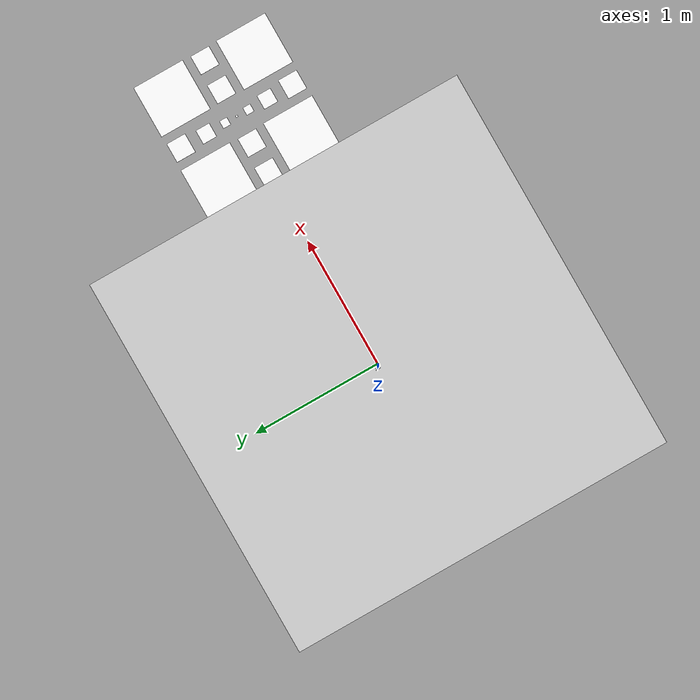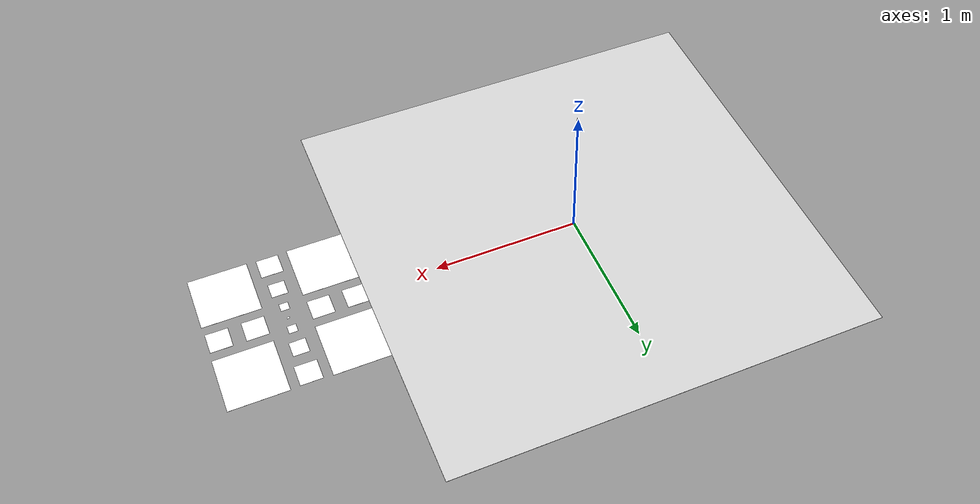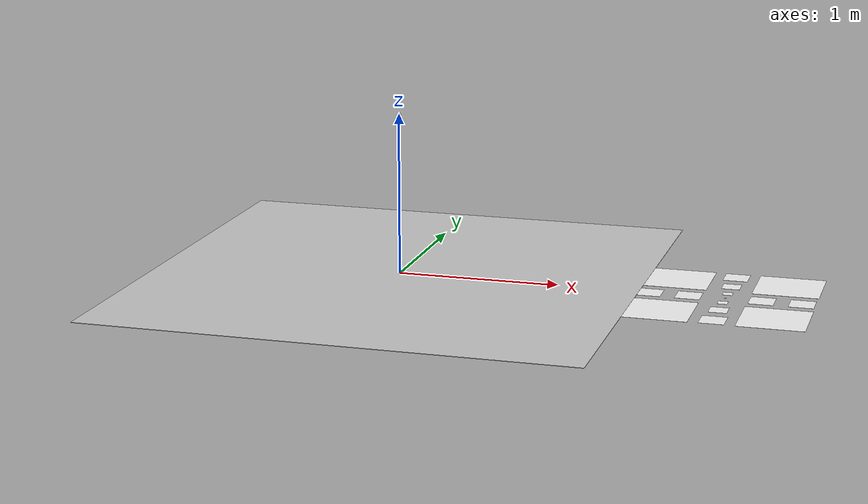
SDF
<?xml version="1.0" encoding="UTF-8"?>
<sdf version="1.9">
  <world name="mtf01_aruco_test">
    <plugin name="gz::sim::systems::Physics"
            filename="gz-sim-physics-system"/>
    <plugin name="gz::sim::systems::UserCommands"
            filename="gz-sim-user-commands-system"/>
    <plugin name="gz::sim::systems::SceneBroadcaster"
            filename="gz-sim-scene-broadcaster-system"/>
    <plugin name="gz::sim::systems::Sensors"
            filename="gz-sim-sensors-system">
      <render_engine>ogre2</render_engine>
    </plugin>
    <physics type="dart">
      <max_step_size>0.004</max_step_size>
      <real_time_factor>1.0</real_time_factor>
      <real_time_update_rate>250</real_time_update_rate>
    </physics>
    <gravity>0 0 -9.8</gravity>
    <scene>
      <grid>false</grid>
      <ambient>0.4 0.4 0.4 1</ambient>
      <background>0.7 0.7 0.7 1</background>
      <shadows>false</shadows>
    </scene>

    <light name="sun" type="directional">
      <pose>0 0 10 0 0 0</pose>
      <cast_shadows>false</cast_shadows>
      <intensity>1</intensity>
      <direction>0.001 0.625 -0.78</direction>
      <diffuse>0.904 0.904 0.904 1</diffuse>
      <specular>0.271 0.271 0.271 1</specular>
    </light>

    <include>
      <uri>model://obrik_aruco_map_4x4</uri>
    </include>

    <!-- The marker map is visual-only. gpu_lidar is render based, so add a
         white floor 1 mm below the marker planes as both its rendered target
         and a physical collision surface. -->
    <model name="mtf01_range_target">
      <static>true</static>
      <link name="link">
        <collision name="collision">
          <geometry>
            <plane>
              <normal>0 0 1</normal>
              <size>3 3</size>
            </plane>
          </geometry>
        </collision>
        <visual name="visual">
          <cast_shadows>false</cast_shadows>
          <geometry>
            <plane>
              <normal>0 0 1</normal>
              <size>3 3</size>
            </plane>
          </geometry>
          <material>
            <ambient>0.8 0.8 0.8 1</ambient>
            <diffuse>0.8 0.8 0.8 1</diffuse>
            <specular>0 0 0 1</specular>
          </material>
        </visual>
      </link>
    </model>

    <include>
      <uri>model://mtf01</uri>
      <name>mtf01_test</name>
      <!-- The reusable model senses along local +Z. Roll 180 degrees points
           it down from 1 m while preserving its X/Y measurement convention. -->
      <pose>0 0 1.0 3.141592653589793 0 0</pose>
      <static>true</static>
    </include>
  </world>
</sdf>

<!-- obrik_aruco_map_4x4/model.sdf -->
<sdf version="1.9">
  <model name="obrik_aruco_map_4x4">
    <static>true</static>
    <link name="link">
        <visual name="marker_1">
          <pose>0.336700 0.336700 0.001000 0.000000 -0.000000 0.000000</pose>
          <cast_shadows>false</cast_shadows>
          <geometry>
            <plane>
              <normal>0 0 1</normal>
              <size>0.400000 0.400000</size>
            </plane>
          </geometry>
          <material>
            <diffuse>1 1 1 1</diffuse>
            <specular>0.1 0.1 0.1 1</specular>
            <pbr>
              <metal>
                <albedo_map>model://obrik_aruco_map_4x4/materials/textures/aruco_1.png</albedo_map>
                <emissive_map>model://obrik_aruco_map_4x4/materials/textures/aruco_1.png</emissive_map>
              </metal>
            </pbr>
          </material>
        </visual>
        <visual name="marker_2">
          <pose>-0.336700 -0.336700 0.001000 0.000000 -0.000000 0.000000</pose>
          <cast_shadows>false</cast_shadows>
          <geometry>
            <plane>
              <normal>0 0 1</normal>
              <size>0.400000 0.400000</size>
            </plane>
          </geometry>
          <material>
            <diffuse>1 1 1 1</diffuse>
            <specular>0.1 0.1 0.1 1</specular>
            <pbr>
              <metal>
                <albedo_map>model://obrik_aruco_map_4x4/materials/textures/aruco_2.png</albedo_map>
                <emissive_map>model://obrik_aruco_map_4x4/materials/textures/aruco_2.png</emissive_map>
              </metal>
            </pbr>
          </material>
        </visual>
        <visual name="marker_3">
          <pose>-0.336700 0.336700 0.001000 0.000000 -0.000000 0.000000</pose>
          <cast_shadows>false</cast_shadows>
          <geometry>
            <plane>
              <normal>0 0 1</normal>
              <size>0.400000 0.400000</size>
            </plane>
          </geometry>
          <material>
            <diffuse>1 1 1 1</diffuse>
            <specular>0.1 0.1 0.1 1</specular>
            <pbr>
              <metal>
                <albedo_map>model://obrik_aruco_map_4x4/materials/textures/aruco_3.png</albedo_map>
                <emissive_map>model://obrik_aruco_map_4x4/materials/textures/aruco_3.png</emissive_map>
              </metal>
            </pbr>
          </material>
        </visual>
        <visual name="marker_4">
          <pose>0.336700 -0.336700 0.001000 0.000000 -0.000000 0.000000</pose>
          <cast_shadows>false</cast_shadows>
          <geometry>
            <plane>
              <normal>0 0 1</normal>
              <size>0.400000 0.400000</size>
            </plane>
          </geometry>
          <material>
            <diffuse>1 1 1 1</diffuse>
            <specular>0.1 0.1 0.1 1</specular>
            <pbr>
              <metal>
                <albedo_map>model://obrik_aruco_map_4x4/materials/textures/aruco_4.png</albedo_map>
                <emissive_map>model://obrik_aruco_map_4x4/materials/textures/aruco_4.png</emissive_map>
              </metal>
            </pbr>
          </material>
        </visual>
        <visual name="marker_5">
          <pose>0.000000 0.095100 0.001000 0.000000 -0.000000 0.000000</pose>
          <cast_shadows>false</cast_shadows>
          <geometry>
            <plane>
              <normal>0 0 1</normal>
              <size>0.060000 0.060000</size>
            </plane>
          </geometry>
          <material>
            <diffuse>1 1 1 1</diffuse>
            <specular>0.1 0.1 0.1 1</specular>
            <pbr>
              <metal>
                <albedo_map>model://obrik_aruco_map_4x4/materials/textures/aruco_5.png</albedo_map>
                <emissive_map>model://obrik_aruco_map_4x4/materials/textures/aruco_5.png</emissive_map>
              </metal>
            </pbr>
          </material>
        </visual>
        <visual name="marker_6">
          <pose>0.000000 -0.095100 0.001000 0.000000 -0.000000 0.000000</pose>
          <cast_shadows>false</cast_shadows>
          <geometry>
            <plane>
              <normal>0 0 1</normal>
              <size>0.060000 0.060000</size>
            </plane>
          </geometry>
          <material>
            <diffuse>1 1 1 1</diffuse>
            <specular>0.1 0.1 0.1 1</specular>
            <pbr>
              <metal>
                <albedo_map>model://obrik_aruco_map_4x4/materials/textures/aruco_6.png</albedo_map>
                <emissive_map>model://obrik_aruco_map_4x4/materials/textures/aruco_6.png</emissive_map>
              </metal>
            </pbr>
          </material>
        </visual>
        <visual name="marker_7">
          <pose>0.000000 0.249500 0.001000 0.000000 -0.000000 0.000000</pose>
          <cast_shadows>false</cast_shadows>
          <geometry>
            <plane>
              <normal>0 0 1</normal>
              <size>0.110000 0.110000</size>
            </plane>
          </geometry>
          <material>
            <diffuse>1 1 1 1</diffuse>
            <specular>0.1 0.1 0.1 1</specular>
            <pbr>
              <metal>
                <albedo_map>model://obrik_aruco_map_4x4/materials/textures/aruco_7.png</albedo_map>
                <emissive_map>model://obrik_aruco_map_4x4/materials/textures/aruco_7.png</emissive_map>
              </metal>
            </pbr>
          </material>
        </visual>
        <visual name="marker_8">
          <pose>0.000000 -0.249500 0.001000 0.000000 -0.000000 0.000000</pose>
          <cast_shadows>false</cast_shadows>
          <geometry>
            <plane>
              <normal>0 0 1</normal>
              <size>0.110000 0.110000</size>
            </plane>
          </geometry>
          <material>
            <diffuse>1 1 1 1</diffuse>
            <specular>0.1 0.1 0.1 1</specular>
            <pbr>
              <metal>
                <albedo_map>model://obrik_aruco_map_4x4/materials/textures/aruco_8.png</albedo_map>
                <emissive_map>model://obrik_aruco_map_4x4/materials/textures/aruco_8.png</emissive_map>
              </metal>
            </pbr>
          </material>
        </visual>
        <visual name="marker_9">
          <pose>0.000000 0.455000 0.001000 0.000000 -0.000000 0.000000</pose>
          <cast_shadows>false</cast_shadows>
          <geometry>
            <plane>
              <normal>0 0 1</normal>
              <size>0.150000 0.150000</size>
            </plane>
          </geometry>
          <material>
            <diffuse>1 1 1 1</diffuse>
            <specular>0.1 0.1 0.1 1</specular>
            <pbr>
              <metal>
                <albedo_map>model://obrik_aruco_map_4x4/materials/textures/aruco_9.png</albedo_map>
                <emissive_map>model://obrik_aruco_map_4x4/materials/textures/aruco_9.png</emissive_map>
              </metal>
            </pbr>
          </material>
        </visual>
        <visual name="marker_10">
          <pose>0.000000 -0.455000 0.001000 0.000000 -0.000000 0.000000</pose>
          <cast_shadows>false</cast_shadows>
          <geometry>
            <plane>
              <normal>0 0 1</normal>
              <size>0.150000 0.150000</size>
            </plane>
          </geometry>
          <material>
            <diffuse>1 1 1 1</diffuse>
            <specular>0.1 0.1 0.1 1</specular>
            <pbr>
              <metal>
                <albedo_map>model://obrik_aruco_map_4x4/materials/textures/aruco_10.png</albedo_map>
                <emissive_map>model://obrik_aruco_map_4x4/materials/textures/aruco_10.png</emissive_map>
              </metal>
            </pbr>
          </material>
        </visual>
        <visual name="marker_11">
          <pose>0.455000 0.000000 0.001000 0.000000 -0.000000 0.000000</pose>
          <cast_shadows>false</cast_shadows>
          <geometry>
            <plane>
              <normal>0 0 1</normal>
              <size>0.150000 0.150000</size>
            </plane>
          </geometry>
          <material>
            <diffuse>1 1 1 1</diffuse>
            <specular>0.1 0.1 0.1 1</specular>
            <pbr>
              <metal>
                <albedo_map>model://obrik_aruco_map_4x4/materials/textures/aruco_11.png</albedo_map>
                <emissive_map>model://obrik_aruco_map_4x4/materials/textures/aruco_11.png</emissive_map>
              </metal>
            </pbr>
          </material>
        </visual>
        <visual name="marker_12">
          <pose>0.218400 0.000000 0.001000 0.000000 -0.000000 0.000000</pose>
          <cast_shadows>false</cast_shadows>
          <geometry>
            <plane>
              <normal>0 0 1</normal>
              <size>0.150000 0.150000</size>
            </plane>
          </geometry>
          <material>
            <diffuse>1 1 1 1</diffuse>
            <specular>0.1 0.1 0.1 1</specular>
            <pbr>
              <metal>
                <albedo_map>model://obrik_aruco_map_4x4/materials/textures/aruco_12.png</albedo_map>
                <emissive_map>model://obrik_aruco_map_4x4/materials/textures/aruco_12.png</emissive_map>
              </metal>
            </pbr>
          </material>
        </visual>
        <visual name="marker_13">
          <pose>-0.455000 0.000000 0.001000 0.000000 -0.000000 0.000000</pose>
          <cast_shadows>false</cast_shadows>
          <geometry>
            <plane>
              <normal>0 0 1</normal>
              <size>0.150000 0.150000</size>
            </plane>
          </geometry>
          <material>
            <diffuse>1 1 1 1</diffuse>
            <specular>0.1 0.1 0.1 1</specular>
            <pbr>
              <metal>
                <albedo_map>model://obrik_aruco_map_4x4/materials/textures/aruco_13.png</albedo_map>
                <emissive_map>model://obrik_aruco_map_4x4/materials/textures/aruco_13.png</emissive_map>
              </metal>
            </pbr>
          </material>
        </visual>
        <visual name="marker_14">
          <pose>-0.218400 0.000000 0.001000 0.000000 -0.000000 0.000000</pose>
          <cast_shadows>false</cast_shadows>
          <geometry>
            <plane>
              <normal>0 0 1</normal>
              <size>0.150000 0.150000</size>
            </plane>
          </geometry>
          <material>
            <diffuse>1 1 1 1</diffuse>
            <specular>0.1 0.1 0.1 1</specular>
            <pbr>
              <metal>
                <albedo_map>model://obrik_aruco_map_4x4/materials/textures/aruco_14.png</albedo_map>
                <emissive_map>model://obrik_aruco_map_4x4/materials/textures/aruco_14.png</emissive_map>
              </metal>
            </pbr>
          </material>
        </visual>
        <visual name="marker_15">
          <pose>0.000000 0.000000 0.001000 0.000000 -0.000000 0.000000</pose>
          <cast_shadows>false</cast_shadows>
          <geometry>
            <plane>
              <normal>0 0 1</normal>
              <size>0.015000 0.015000</size>
            </plane>
          </geometry>
          <material>
            <diffuse>1 1 1 1</diffuse>
            <specular>0.1 0.1 0.1 1</specular>
            <pbr>
              <metal>
                <albedo_map>model://obrik_aruco_map_4x4/materials/textures/aruco_15.png</albedo_map>
                <emissive_map>model://obrik_aruco_map_4x4/materials/textures/aruco_15.png</emissive_map>
              </metal>
            </pbr>
          </material>
        </visual>
        <visual name="marker_16">
          <pose>1.010100 0.336700 0.001000 0.000000 -0.000000 0.000000</pose>
          <cast_shadows>false</cast_shadows>
          <geometry>
            <plane>
              <normal>0 0 1</normal>
              <size>0.400000 0.400000</size>
            </plane>
          </geometry>
          <material>
            <diffuse>1 1 1 1</diffuse>
            <specular>0.1 0.1 0.1 1</specular>
            <pbr>
              <metal>
                <albedo_map>model://obrik_aruco_map_4x4/materials/textures/aruco_16.png</albedo_map>
                <emissive_map>model://obrik_aruco_map_4x4/materials/textures/aruco_16.png</emissive_map>
              </metal>
            </pbr>
          </material>
        </visual>
        <visual name="marker_18">
          <pose>1.010100 -0.336700 0.001000 0.000000 -0.000000 0.000000</pose>
          <cast_shadows>false</cast_shadows>
          <geometry>
            <plane>
              <normal>0 0 1</normal>
              <size>0.400000 0.400000</size>
            </plane>
          </geometry>
          <material>
            <diffuse>1 1 1 1</diffuse>
            <specular>0.1 0.1 0.1 1</specular>
            <pbr>
              <metal>
                <albedo_map>model://obrik_aruco_map_4x4/materials/textures/aruco_18.png</albedo_map>
                <emissive_map>model://obrik_aruco_map_4x4/materials/textures/aruco_18.png</emissive_map>
              </metal>
            </pbr>
          </material>
        </visual>
        <visual name="marker_20">
          <pose>0.673400 0.095100 0.001000 0.000000 -0.000000 0.000000</pose>
          <cast_shadows>false</cast_shadows>
          <geometry>
            <plane>
              <normal>0 0 1</normal>
              <size>0.060000 0.060000</size>
            </plane>
          </geometry>
          <material>
            <diffuse>1 1 1 1</diffuse>
            <specular>0.1 0.1 0.1 1</specular>
            <pbr>
              <metal>
                <albedo_map>model://obrik_aruco_map_4x4/materials/textures/aruco_20.png</albedo_map>
                <emissive_map>model://obrik_aruco_map_4x4/materials/textures/aruco_20.png</emissive_map>
              </metal>
            </pbr>
          </material>
        </visual>
        <visual name="marker_21">
          <pose>0.673400 -0.095100 0.001000 0.000000 -0.000000 0.000000</pose>
          <cast_shadows>false</cast_shadows>
          <geometry>
            <plane>
              <normal>0 0 1</normal>
              <size>0.060000 0.060000</size>
            </plane>
          </geometry>
          <material>
            <diffuse>1 1 1 1</diffuse>
            <specular>0.1 0.1 0.1 1</specular>
            <pbr>
              <metal>
                <albedo_map>model://obrik_aruco_map_4x4/materials/textures/aruco_21.png</albedo_map>
                <emissive_map>model://obrik_aruco_map_4x4/materials/textures/aruco_21.png</emissive_map>
              </metal>
            </pbr>
          </material>
        </visual>
        <visual name="marker_22">
          <pose>0.673400 0.249500 0.001000 0.000000 -0.000000 0.000000</pose>
          <cast_shadows>false</cast_shadows>
          <geometry>
            <plane>
              <normal>0 0 1</normal>
              <size>0.110000 0.110000</size>
            </plane>
          </geometry>
          <material>
            <diffuse>1 1 1 1</diffuse>
            <specular>0.1 0.1 0.1 1</specular>
            <pbr>
              <metal>
                <albedo_map>model://obrik_aruco_map_4x4/materials/textures/aruco_22.png</albedo_map>
                <emissive_map>model://obrik_aruco_map_4x4/materials/textures/aruco_22.png</emissive_map>
              </metal>
            </pbr>
          </material>
        </visual>
        <visual name="marker_23">
          <pose>0.673400 -0.249500 0.001000 0.000000 -0.000000 0.000000</pose>
          <cast_shadows>false</cast_shadows>
          <geometry>
            <plane>
              <normal>0 0 1</normal>
              <size>0.110000 0.110000</size>
            </plane>
          </geometry>
          <material>
            <diffuse>1 1 1 1</diffuse>
            <specular>0.1 0.1 0.1 1</specular>
            <pbr>
              <metal>
                <albedo_map>model://obrik_aruco_map_4x4/materials/textures/aruco_23.png</albedo_map>
                <emissive_map>model://obrik_aruco_map_4x4/materials/textures/aruco_23.png</emissive_map>
              </metal>
            </pbr>
          </material>
        </visual>
        <visual name="marker_24">
          <pose>0.673400 0.455000 0.001000 0.000000 -0.000000 0.000000</pose>
          <cast_shadows>false</cast_shadows>
          <geometry>
            <plane>
              <normal>0 0 1</normal>
              <size>0.150000 0.150000</size>
            </plane>
          </geometry>
          <material>
            <diffuse>1 1 1 1</diffuse>
            <specular>0.1 0.1 0.1 1</specular>
            <pbr>
              <metal>
                <albedo_map>model://obrik_aruco_map_4x4/materials/textures/aruco_24.png</albedo_map>
                <emissive_map>model://obrik_aruco_map_4x4/materials/textures/aruco_24.png</emissive_map>
              </metal>
            </pbr>
          </material>
        </visual>
        <visual name="marker_25">
          <pose>0.673400 -0.455000 0.001000 0.000000 -0.000000 0.000000</pose>
          <cast_shadows>false</cast_shadows>
          <geometry>
            <plane>
              <normal>0 0 1</normal>
              <size>0.150000 0.150000</size>
            </plane>
          </geometry>
          <material>
            <diffuse>1 1 1 1</diffuse>
            <specular>0.1 0.1 0.1 1</specular>
            <pbr>
              <metal>
                <albedo_map>model://obrik_aruco_map_4x4/materials/textures/aruco_25.png</albedo_map>
                <emissive_map>model://obrik_aruco_map_4x4/materials/textures/aruco_25.png</emissive_map>
              </metal>
            </pbr>
          </material>
        </visual>
        <visual name="marker_26">
          <pose>1.128400 0.000000 0.001000 0.000000 -0.000000 0.000000</pose>
          <cast_shadows>false</cast_shadows>
          <geometry>
            <plane>
              <normal>0 0 1</normal>
              <size>0.150000 0.150000</size>
            </plane>
          </geometry>
          <material>
            <diffuse>1 1 1 1</diffuse>
            <specular>0.1 0.1 0.1 1</specular>
            <pbr>
              <metal>
                <albedo_map>model://obrik_aruco_map_4x4/materials/textures/aruco_26.png</albedo_map>
                <emissive_map>model://obrik_aruco_map_4x4/materials/textures/aruco_26.png</emissive_map>
              </metal>
            </pbr>
          </material>
        </visual>
        <visual name="marker_27">
          <pose>0.891800 0.000000 0.001000 0.000000 -0.000000 0.000000</pose>
          <cast_shadows>false</cast_shadows>
          <geometry>
            <plane>
              <normal>0 0 1</normal>
              <size>0.150000 0.150000</size>
            </plane>
          </geometry>
          <material>
            <diffuse>1 1 1 1</diffuse>
            <specular>0.1 0.1 0.1 1</specular>
            <pbr>
              <metal>
                <albedo_map>model://obrik_aruco_map_4x4/materials/textures/aruco_27.png</albedo_map>
                <emissive_map>model://obrik_aruco_map_4x4/materials/textures/aruco_27.png</emissive_map>
              </metal>
            </pbr>
          </material>
        </visual>
        <visual name="marker_28">
          <pose>0.673400 0.000000 0.001000 0.000000 -0.000000 0.000000</pose>
          <cast_shadows>false</cast_shadows>
          <geometry>
            <plane>
              <normal>0 0 1</normal>
              <size>0.015000 0.015000</size>
            </plane>
          </geometry>
          <material>
            <diffuse>1 1 1 1</diffuse>
            <specular>0.1 0.1 0.1 1</specular>
            <pbr>
              <metal>
                <albedo_map>model://obrik_aruco_map_4x4/materials/textures/aruco_28.png</albedo_map>
                <emissive_map>model://obrik_aruco_map_4x4/materials/textures/aruco_28.png</emissive_map>
              </metal>
            </pbr>
          </material>
        </visual>
        <visual name="marker_29">
          <pose>-1.010100 0.336700 0.001000 0.000000 -0.000000 0.000000</pose>
          <cast_shadows>false</cast_shadows>
          <geometry>
            <plane>
              <normal>0 0 1</normal>
              <size>0.400000 0.400000</size>
            </plane>
          </geometry>
          <material>
            <diffuse>1 1 1 1</diffuse>
            <specular>0.1 0.1 0.1 1</specular>
            <pbr>
              <metal>
                <albedo_map>model://obrik_aruco_map_4x4/materials/textures/aruco_29.png</albedo_map>
                <emissive_map>model://obrik_aruco_map_4x4/materials/textures/aruco_29.png</emissive_map>
              </metal>
            </pbr>
          </material>
        </visual>
        <visual name="marker_94">
          <pose>-1.010100 -0.336700 0.001000 0.000000 -0.000000 0.000000</pose>
          <cast_shadows>false</cast_shadows>
          <geometry>
            <plane>
              <normal>0 0 1</normal>
              <size>0.400000 0.400000</size>
            </plane>
          </geometry>
          <material>
            <diffuse>1 1 1 1</diffuse>
            <specular>0.1 0.1 0.1 1</specular>
            <pbr>
              <metal>
                <albedo_map>model://obrik_aruco_map_4x4/materials/textures/aruco_94.png</albedo_map>
                <emissive_map>model://obrik_aruco_map_4x4/materials/textures/aruco_94.png</emissive_map>
              </metal>
            </pbr>
          </material>
        </visual>
        <visual name="marker_31">
          <pose>-0.673400 0.095100 0.001000 0.000000 -0.000000 0.000000</pose>
          <cast_shadows>false</cast_shadows>
          <geometry>
            <plane>
              <normal>0 0 1</normal>
              <size>0.060000 0.060000</size>
            </plane>
          </geometry>
          <material>
            <diffuse>1 1 1 1</diffuse>
            <specular>0.1 0.1 0.1 1</specular>
            <pbr>
              <metal>
                <albedo_map>model://obrik_aruco_map_4x4/materials/textures/aruco_31.png</albedo_map>
                <emissive_map>model://obrik_aruco_map_4x4/materials/textures/aruco_31.png</emissive_map>
              </metal>
            </pbr>
          </material>
        </visual>
        <visual name="marker_32">
          <pose>-0.673400 -0.095100 0.001000 0.000000 -0.000000 0.000000</pose>
          <cast_shadows>false</cast_shadows>
          <geometry>
            <plane>
              <normal>0 0 1</normal>
              <size>0.060000 0.060000</size>
            </plane>
          </geometry>
          <material>
            <diffuse>1 1 1 1</diffuse>
            <specular>0.1 0.1 0.1 1</specular>
            <pbr>
              <metal>
                <albedo_map>model://obrik_aruco_map_4x4/materials/textures/aruco_32.png</albedo_map>
                <emissive_map>model://obrik_aruco_map_4x4/materials/textures/aruco_32.png</emissive_map>
              </metal>
            </pbr>
          </material>
        </visual>
        <visual name="marker_33">
          <pose>-0.673400 0.249500 0.001000 0.000000 -0.000000 0.000000</pose>
          <cast_shadows>false</cast_shadows>
          <geometry>
            <plane>
              <normal>0 0 1</normal>
              <size>0.110000 0.110000</size>
            </plane>
          </geometry>
          <material>
            <diffuse>1 1 1 1</diffuse>
            <specular>0.1 0.1 0.1 1</specular>
            <pbr>
              <metal>
                <albedo_map>model://obrik_aruco_map_4x4/materials/textures/aruco_33.png</albedo_map>
                <emissive_map>model://obrik_aruco_map_4x4/materials/textures/aruco_33.png</emissive_map>
              </metal>
            </pbr>
          </material>
        </visual>
        <visual name="marker_34">
          <pose>-0.673400 -0.249500 0.001000 0.000000 -0.000000 0.000000</pose>
          <cast_shadows>false</cast_shadows>
          <geometry>
            <plane>
              <normal>0 0 1</normal>
              <size>0.110000 0.110000</size>
            </plane>
          </geometry>
          <material>
            <diffuse>1 1 1 1</diffuse>
            <specular>0.1 0.1 0.1 1</specular>
            <pbr>
              <metal>
                <albedo_map>model://obrik_aruco_map_4x4/materials/textures/aruco_34.png</albedo_map>
                <emissive_map>model://obrik_aruco_map_4x4/materials/textures/aruco_34.png</emissive_map>
              </metal>
            </pbr>
          </material>
        </visual>
        <visual name="marker_35">
          <pose>-0.673400 0.455000 0.001000 0.000000 -0.000000 0.000000</pose>
          <cast_shadows>false</cast_shadows>
          <geometry>
            <plane>
              <normal>0 0 1</normal>
              <size>0.150000 0.150000</size>
            </plane>
          </geometry>
          <material>
            <diffuse>1 1 1 1</diffuse>
            <specular>0.1 0.1 0.1 1</specular>
            <pbr>
              <metal>
                <albedo_map>model://obrik_aruco_map_4x4/materials/textures/aruco_35.png</albedo_map>
                <emissive_map>model://obrik_aruco_map_4x4/materials/textures/aruco_35.png</emissive_map>
              </metal>
            </pbr>
          </material>
        </visual>
        <visual name="marker_36">
          <pose>-0.673400 -0.455000 0.001000 0.000000 -0.000000 0.000000</pose>
          <cast_shadows>false</cast_shadows>
          <geometry>
            <plane>
              <normal>0 0 1</normal>
              <size>0.150000 0.150000</size>
            </plane>
          </geometry>
          <material>
            <diffuse>1 1 1 1</diffuse>
            <specular>0.1 0.1 0.1 1</specular>
            <pbr>
              <metal>
                <albedo_map>model://obrik_aruco_map_4x4/materials/textures/aruco_36.png</albedo_map>
                <emissive_map>model://obrik_aruco_map_4x4/materials/textures/aruco_36.png</emissive_map>
              </metal>
            </pbr>
          </material>
        </visual>
        <visual name="marker_92">
          <pose>-1.128400 0.000000 0.001000 0.000000 -0.000000 0.000000</pose>
          <cast_shadows>false</cast_shadows>
          <geometry>
            <plane>
              <normal>0 0 1</normal>
              <size>0.150000 0.150000</size>
            </plane>
          </geometry>
          <material>
            <diffuse>1 1 1 1</diffuse>
            <specular>0.1 0.1 0.1 1</specular>
            <pbr>
              <metal>
                <albedo_map>model://obrik_aruco_map_4x4/materials/textures/aruco_92.png</albedo_map>
                <emissive_map>model://obrik_aruco_map_4x4/materials/textures/aruco_92.png</emissive_map>
              </metal>
            </pbr>
          </material>
        </visual>
        <visual name="marker_38">
          <pose>-0.891800 0.000000 0.001000 0.000000 -0.000000 0.000000</pose>
          <cast_shadows>false</cast_shadows>
          <geometry>
            <plane>
              <normal>0 0 1</normal>
              <size>0.150000 0.150000</size>
            </plane>
          </geometry>
          <material>
            <diffuse>1 1 1 1</diffuse>
            <specular>0.1 0.1 0.1 1</specular>
            <pbr>
              <metal>
                <albedo_map>model://obrik_aruco_map_4x4/materials/textures/aruco_38.png</albedo_map>
                <emissive_map>model://obrik_aruco_map_4x4/materials/textures/aruco_38.png</emissive_map>
              </metal>
            </pbr>
          </material>
        </visual>
        <visual name="marker_39">
          <pose>-0.673400 0.000000 0.001000 0.000000 -0.000000 0.000000</pose>
          <cast_shadows>false</cast_shadows>
          <geometry>
            <plane>
              <normal>0 0 1</normal>
              <size>0.015000 0.015000</size>
            </plane>
          </geometry>
          <material>
            <diffuse>1 1 1 1</diffuse>
            <specular>0.1 0.1 0.1 1</specular>
            <pbr>
              <metal>
                <albedo_map>model://obrik_aruco_map_4x4/materials/textures/aruco_39.png</albedo_map>
                <emissive_map>model://obrik_aruco_map_4x4/materials/textures/aruco_39.png</emissive_map>
              </metal>
            </pbr>
          </material>
        </visual>
        <visual name="marker_40">
          <pose>1.683500 0.336700 0.001000 0.000000 -0.000000 0.000000</pose>
          <cast_shadows>false</cast_shadows>
          <geometry>
            <plane>
              <normal>0 0 1</normal>
              <size>0.400000 0.400000</size>
            </plane>
          </geometry>
          <material>
            <diffuse>1 1 1 1</diffuse>
            <specular>0.1 0.1 0.1 1</specular>
            <pbr>
              <metal>
                <albedo_map>model://obrik_aruco_map_4x4/materials/textures/aruco_40.png</albedo_map>
                <emissive_map>model://obrik_aruco_map_4x4/materials/textures/aruco_40.png</emissive_map>
              </metal>
            </pbr>
          </material>
        </visual>
        <visual name="marker_97">
          <pose>1.683500 -0.336700 0.001000 0.000000 -0.000000 0.000000</pose>
          <cast_shadows>false</cast_shadows>
          <geometry>
            <plane>
              <normal>0 0 1</normal>
              <size>0.400000 0.400000</size>
            </plane>
          </geometry>
          <material>
            <diffuse>1 1 1 1</diffuse>
            <specular>0.1 0.1 0.1 1</specular>
            <pbr>
              <metal>
                <albedo_map>model://obrik_aruco_map_4x4/materials/textures/aruco_97.png</albedo_map>
                <emissive_map>model://obrik_aruco_map_4x4/materials/textures/aruco_97.png</emissive_map>
              </metal>
            </pbr>
          </material>
        </visual>
        <visual name="marker_42">
          <pose>1.346800 0.095100 0.001000 0.000000 -0.000000 0.000000</pose>
          <cast_shadows>false</cast_shadows>
          <geometry>
            <plane>
              <normal>0 0 1</normal>
              <size>0.060000 0.060000</size>
            </plane>
          </geometry>
          <material>
            <diffuse>1 1 1 1</diffuse>
            <specular>0.1 0.1 0.1 1</specular>
            <pbr>
              <metal>
                <albedo_map>model://obrik_aruco_map_4x4/materials/textures/aruco_42.png</albedo_map>
                <emissive_map>model://obrik_aruco_map_4x4/materials/textures/aruco_42.png</emissive_map>
              </metal>
            </pbr>
          </material>
        </visual>
        <visual name="marker_43">
          <pose>1.346800 -0.095100 0.001000 0.000000 -0.000000 0.000000</pose>
          <cast_shadows>false</cast_shadows>
          <geometry>
            <plane>
              <normal>0 0 1</normal>
              <size>0.060000 0.060000</size>
            </plane>
          </geometry>
          <material>
            <diffuse>1 1 1 1</diffuse>
            <specular>0.1 0.1 0.1 1</specular>
            <pbr>
              <metal>
                <albedo_map>model://obrik_aruco_map_4x4/materials/textures/aruco_43.png</albedo_map>
                <emissive_map>model://obrik_aruco_map_4x4/materials/textures/aruco_43.png</emissive_map>
              </metal>
            </pbr>
          </material>
        </visual>
        <visual name="marker_44">
          <pose>1.346800 0.249500 0.001000 0.000000 -0.000000 0.000000</pose>
          <cast_shadows>false</cast_shadows>
          <geometry>
            <plane>
              <normal>0 0 1</normal>
              <size>0.110000 0.110000</size>
            </plane>
          </geometry>
          <material>
            <diffuse>1 1 1 1</diffuse>
            <specular>0.1 0.1 0.1 1</specular>
            <pbr>
              <metal>
                <albedo_map>model://obrik_aruco_map_4x4/materials/textures/aruco_44.png</albedo_map>
                <emissive_map>model://obrik_aruco_map_4x4/materials/textures/aruco_44.png</emissive_map>
              </metal>
            </pbr>
          </material>
        </visual>
        <visual name="marker_45">
          <pose>1.346800 -0.249500 0.001000 0.000000 -0.000000 0.000000</pose>
          <cast_shadows>false</cast_shadows>
          <geometry>
            <plane>
              <normal>0 0 1</normal>
              <size>0.110000 0.110000</size>
            </plane>
          </geometry>
          <material>
            <diffuse>1 1 1 1</diffuse>
            <specular>0.1 0.1 0.1 1</specular>
            <pbr>
              <metal>
                <albedo_map>model://obrik_aruco_map_4x4/materials/textures/aruco_45.png</albedo_map>
                <emissive_map>model://obrik_aruco_map_4x4/materials/textures/aruco_45.png</emissive_map>
              </metal>
            </pbr>
          </material>
        </visual>
        <visual name="marker_46">
          <pose>1.346800 0.455000 0.001000 0.000000 -0.000000 0.000000</pose>
          <cast_shadows>false</cast_shadows>
          <geometry>
            <plane>
              <normal>0 0 1</normal>
              <size>0.150000 0.150000</size>
            </plane>
          </geometry>
          <material>
            <diffuse>1 1 1 1</diffuse>
            <specular>0.1 0.1 0.1 1</specular>
            <pbr>
              <metal>
                <albedo_map>model://obrik_aruco_map_4x4/materials/textures/aruco_46.png</albedo_map>
                <emissive_map>model://obrik_aruco_map_4x4/materials/textures/aruco_46.png</emissive_map>
              </metal>
            </pbr>
          </material>
        </visual>
        <visual name="marker_47">
          <pose>1.346800 -0.455000 0.001000 0.000000 -0.000000 0.000000</pose>
          <cast_shadows>false</cast_shadows>
          <geometry>
            <plane>
              <normal>0 0 1</normal>
              <size>0.150000 0.150000</size>
            </plane>
          </geometry>
          <material>
            <diffuse>1 1 1 1</diffuse>
            <specular>0.1 0.1 0.1 1</specular>
            <pbr>
              <metal>
                <albedo_map>model://obrik_aruco_map_4x4/materials/textures/aruco_47.png</albedo_map>
                <emissive_map>model://obrik_aruco_map_4x4/materials/textures/aruco_47.png</emissive_map>
              </metal>
            </pbr>
          </material>
        </visual>
        <visual name="marker_48">
          <pose>1.565200 0.000000 0.001000 0.000000 -0.000000 0.000000</pose>
          <cast_shadows>false</cast_shadows>
          <geometry>
            <plane>
              <normal>0 0 1</normal>
              <size>0.150000 0.150000</size>
            </plane>
          </geometry>
          <material>
            <diffuse>1 1 1 1</diffuse>
            <specular>0.1 0.1 0.1 1</specular>
            <pbr>
              <metal>
                <albedo_map>model://obrik_aruco_map_4x4/materials/textures/aruco_48.png</albedo_map>
                <emissive_map>model://obrik_aruco_map_4x4/materials/textures/aruco_48.png</emissive_map>
              </metal>
            </pbr>
          </material>
        </visual>
        <visual name="marker_49">
          <pose>1.801800 0.000000 0.001000 0.000000 -0.000000 0.000000</pose>
          <cast_shadows>false</cast_shadows>
          <geometry>
            <plane>
              <normal>0 0 1</normal>
              <size>0.150000 0.150000</size>
            </plane>
          </geometry>
          <material>
            <diffuse>1 1 1 1</diffuse>
            <specular>0.1 0.1 0.1 1</specular>
            <pbr>
              <metal>
                <albedo_map>model://obrik_aruco_map_4x4/materials/textures/aruco_49.png</albedo_map>
                <emissive_map>model://obrik_aruco_map_4x4/materials/textures/aruco_49.png</emissive_map>
              </metal>
            </pbr>
          </material>
        </visual>
        <visual name="marker_50">
          <pose>1.346800 0.000000 0.001000 0.000000 -0.000000 0.000000</pose>
          <cast_shadows>false</cast_shadows>
          <geometry>
            <plane>
              <normal>0 0 1</normal>
              <size>0.015000 0.015000</size>
            </plane>
          </geometry>
          <material>
            <diffuse>1 1 1 1</diffuse>
            <specular>0.1 0.1 0.1 1</specular>
            <pbr>
              <metal>
                <albedo_map>model://obrik_aruco_map_4x4/materials/textures/aruco_50.png</albedo_map>
                <emissive_map>model://obrik_aruco_map_4x4/materials/textures/aruco_50.png</emissive_map>
              </metal>
            </pbr>
          </material>
        </visual>
        <visual name="marker_51">
          <pose>2.356900 0.336700 0.001000 0.000000 -0.000000 0.000000</pose>
          <cast_shadows>false</cast_shadows>
          <geometry>
            <plane>
              <normal>0 0 1</normal>
              <size>0.400000 0.400000</size>
            </plane>
          </geometry>
          <material>
            <diffuse>1 1 1 1</diffuse>
            <specular>0.1 0.1 0.1 1</specular>
            <pbr>
              <metal>
                <albedo_map>model://obrik_aruco_map_4x4/materials/textures/aruco_51.png</albedo_map>
                <emissive_map>model://obrik_aruco_map_4x4/materials/textures/aruco_51.png</emissive_map>
              </metal>
            </pbr>
          </material>
        </visual>
        <visual name="marker_52">
          <pose>2.356900 -0.336700 0.001000 0.000000 -0.000000 0.000000</pose>
          <cast_shadows>false</cast_shadows>
          <geometry>
            <plane>
              <normal>0 0 1</normal>
              <size>0.400000 0.400000</size>
            </plane>
          </geometry>
          <material>
            <diffuse>1 1 1 1</diffuse>
            <specular>0.1 0.1 0.1 1</specular>
            <pbr>
              <metal>
                <albedo_map>model://obrik_aruco_map_4x4/materials/textures/aruco_52.png</albedo_map>
                <emissive_map>model://obrik_aruco_map_4x4/materials/textures/aruco_52.png</emissive_map>
              </metal>
            </pbr>
          </material>
        </visual>
        <visual name="marker_53">
          <pose>2.020200 0.095100 0.001000 0.000000 -0.000000 0.000000</pose>
          <cast_shadows>false</cast_shadows>
          <geometry>
            <plane>
              <normal>0 0 1</normal>
              <size>0.060000 0.060000</size>
            </plane>
          </geometry>
          <material>
            <diffuse>1 1 1 1</diffuse>
            <specular>0.1 0.1 0.1 1</specular>
            <pbr>
              <metal>
                <albedo_map>model://obrik_aruco_map_4x4/materials/textures/aruco_53.png</albedo_map>
                <emissive_map>model://obrik_aruco_map_4x4/materials/textures/aruco_53.png</emissive_map>
              </metal>
            </pbr>
          </material>
        </visual>
        <visual name="marker_54">
          <pose>2.020200 -0.095100 0.001000 0.000000 -0.000000 0.000000</pose>
          <cast_shadows>false</cast_shadows>
          <geometry>
            <plane>
              <normal>0 0 1</normal>
              <size>0.060000 0.060000</size>
            </plane>
          </geometry>
          <material>
            <diffuse>1 1 1 1</diffuse>
            <specular>0.1 0.1 0.1 1</specular>
            <pbr>
              <metal>
                <albedo_map>model://obrik_aruco_map_4x4/materials/textures/aruco_54.png</albedo_map>
                <emissive_map>model://obrik_aruco_map_4x4/materials/textures/aruco_54.png</emissive_map>
              </metal>
            </pbr>
          </material>
        </visual>
        <visual name="marker_55">
          <pose>2.020200 0.249500 0.001000 0.000000 -0.000000 0.000000</pose>
          <cast_shadows>false</cast_shadows>
          <geometry>
            <plane>
              <normal>0 0 1</normal>
              <size>0.110000 0.110000</size>
            </plane>
          </geometry>
          <material>
            <diffuse>1 1 1 1</diffuse>
            <specular>0.1 0.1 0.1 1</specular>
            <pbr>
              <metal>
                <albedo_map>model://obrik_aruco_map_4x4/materials/textures/aruco_55.png</albedo_map>
                <emissive_map>model://obrik_aruco_map_4x4/materials/textures/aruco_55.png</emissive_map>
              </metal>
            </pbr>
          </material>
        </visual>
        <visual name="marker_56">
          <pose>2.020200 -0.249500 0.001000 0.000000 -0.000000 0.000000</pose>
          <cast_shadows>false</cast_shadows>
          <geometry>
            <plane>
              <normal>0 0 1</normal>
              <size>0.110000 0.110000</size>
            </plane>
          </geometry>
          <material>
            <diffuse>1 1 1 1</diffuse>
            <specular>0.1 0.1 0.1 1</specular>
            <pbr>
              <metal>
                <albedo_map>model://obrik_aruco_map_4x4/materials/textures/aruco_56.png</albedo_map>
                <emissive_map>model://obrik_aruco_map_4x4/materials/textures/aruco_56.png</emissive_map>
              </metal>
            </pbr>
          </material>
        </visual>
        <visual name="marker_57">
          <pose>2.020200 0.455000 0.001000 0.000000 -0.000000 0.000000</pose>
          <cast_shadows>false</cast_shadows>
          <geometry>
            <plane>
              <normal>0 0 1</normal>
              <size>0.150000 0.150000</size>
            </plane>
          </geometry>
          <material>
            <diffuse>1 1 1 1</diffuse>
            <specular>0.1 0.1 0.1 1</specular>
            <pbr>
              <metal>
                <albedo_map>model://obrik_aruco_map_4x4/materials/textures/aruco_57.png</albedo_map>
                <emissive_map>model://obrik_aruco_map_4x4/materials/textures/aruco_57.png</emissive_map>
              </metal>
            </pbr>
          </material>
        </visual>
        <visual name="marker_58">
          <pose>2.020200 -0.455000 0.001000 0.000000 -0.000000 0.000000</pose>
          <cast_shadows>false</cast_shadows>
          <geometry>
            <plane>
              <normal>0 0 1</normal>
              <size>0.150000 0.150000</size>
            </plane>
          </geometry>
          <material>
            <diffuse>1 1 1 1</diffuse>
            <specular>0.1 0.1 0.1 1</specular>
            <pbr>
              <metal>
                <albedo_map>model://obrik_aruco_map_4x4/materials/textures/aruco_58.png</albedo_map>
                <emissive_map>model://obrik_aruco_map_4x4/materials/textures/aruco_58.png</emissive_map>
              </metal>
            </pbr>
          </material>
        </visual>
        <visual name="marker_59">
          <pose>2.238600 0.000000 0.001000 0.000000 -0.000000 0.000000</pose>
          <cast_shadows>false</cast_shadows>
          <geometry>
            <plane>
              <normal>0 0 1</normal>
              <size>0.150000 0.150000</size>
            </plane>
          </geometry>
          <material>
            <diffuse>1 1 1 1</diffuse>
            <specular>0.1 0.1 0.1 1</specular>
            <pbr>
              <metal>
                <albedo_map>model://obrik_aruco_map_4x4/materials/textures/aruco_59.png</albedo_map>
                <emissive_map>model://obrik_aruco_map_4x4/materials/textures/aruco_59.png</emissive_map>
              </metal>
            </pbr>
          </material>
        </visual>
        <visual name="marker_96">
          <pose>2.475200 0.000000 0.001000 0.000000 -0.000000 0.000000</pose>
          <cast_shadows>false</cast_shadows>
          <geometry>
            <plane>
              <normal>0 0 1</normal>
              <size>0.150000 0.150000</size>
            </plane>
          </geometry>
          <material>
            <diffuse>1 1 1 1</diffuse>
            <specular>0.1 0.1 0.1 1</specular>
            <pbr>
              <metal>
                <albedo_map>model://obrik_aruco_map_4x4/materials/textures/aruco_96.png</albedo_map>
                <emissive_map>model://obrik_aruco_map_4x4/materials/textures/aruco_96.png</emissive_map>
              </metal>
            </pbr>
          </material>
        </visual>
        <visual name="marker_61">
          <pose>2.020200 0.000000 0.001000 0.000000 -0.000000 0.000000</pose>
          <cast_shadows>false</cast_shadows>
          <geometry>
            <plane>
              <normal>0 0 1</normal>
              <size>0.015000 0.015000</size>
            </plane>
          </geometry>
          <material>
            <diffuse>1 1 1 1</diffuse>
            <specular>0.1 0.1 0.1 1</specular>
            <pbr>
              <metal>
                <albedo_map>model://obrik_aruco_map_4x4/materials/textures/aruco_61.png</albedo_map>
                <emissive_map>model://obrik_aruco_map_4x4/materials/textures/aruco_61.png</emissive_map>
              </metal>
            </pbr>
          </material>
        </visual>
    </link>
  </model>
</sdf>

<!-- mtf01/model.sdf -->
<sdf version="1.9">
  <model name="mtf01">
    <self_collide>false</self_collide>
    <static>false</static>

    <!-- Mechanical frame. The normalized decimated mesh is already in metres;
         its shared physical flow/ToF sensing axis is link-local +X. -->
    <link name="mtf01_link">
      <inertial>
        <mass>0.0045</mass>
        <inertia>
          <ixx>0.00000019</ixx>
          <iyy>0.00000040</iyy>
          <izz>0.00000043</izz>
          <ixy>0</ixy>
          <ixz>0</ixz>
          <iyz>0</iyz>
        </inertia>
      </inertial>
      <visual name="mtf01_visual">
        <geometry>
          <mesh>
            <scale>1 1 1</scale>
            <uri>model://mtf01/meshes/mtf01.obj</uri>
          </mesh>
        </geometry>
      </visual>
    </link>

    <!-- The sensing origin is (+10 mm, 0, +3.5 mm) in the normalized
         mechanical frame. The flow_link/flow_camera names are retained for
         the ROS/PX4 bridge. -->
    <link name="flow_link">
      <pose relative_to="mtf01_link">0.010 0 0.0035 0 0 0</pose>
      <inertial>
        <mass>0.000001</mass>
        <inertia>
          <ixx>0.000000000001</ixx>
          <iyy>0.000000000001</iyy>
          <izz>0.000000000001</izz>
          <ixy>0</ixy>
          <ixz>0</ixz>
          <iyz>0</iyz>
        </inertia>
      </inertial>
      <sensor name="flow_camera" type="camera">
        <!-- Gazebo cameras render along +X, which is now the normalized
             MTF-01 sensing axis without a rotational correction. -->
        <pose>0 0 0 0 0 0</pose>
        <camera>
          <horizontal_fov>0.733038285838</horizontal_fov>
          <image>
            <!-- Internal Gazebo image source for optical-flow calculation;
                 the physical MTF-01 does not expose a raw video stream. -->
            <width>100</width>
            <height>100</height>
          </image>
          <clip>
            <near>0.08</near>
            <far>30</far>
          </clip>
        </camera>
        <always_on>true</always_on>
        <update_rate>100</update_rate>
        <visualize>false</visualize>
      </sensor>
    </link>
    <joint name="mtf01_flow_joint" type="fixed">
      <parent>mtf01_link</parent>
      <child>flow_link</child>
    </joint>

    <!-- The ToF origin and +X sensing direction are shared with optical flow.
         PX4's Gazebo bridge requires the lidar_sensor_link/lidar names. -->
    <link name="lidar_sensor_link">
      <pose relative_to="mtf01_link">0.010 0 0.0035 0 0 0</pose>
      <inertial>
        <mass>0.000001</mass>
        <inertia>
          <ixx>0.000000000001</ixx>
          <iyy>0.000000000001</iyy>
          <izz>0.000000000001</izz>
          <ixy>0</ixy>
          <ixz>0</ixz>
          <iyz>0</iyz>
        </inertia>
      </inertial>
      <sensor name="lidar" type="gpu_lidar">
        <!-- Gazebo's lidar ray axis is +X, matching the normalized model. -->
        <pose>0 0 0 0 0 0</pose>
        <update_rate>100</update_rate>
        <ray>
          <scan>
            <horizontal>
              <samples>1</samples>
              <resolution>1</resolution>
              <min_angle>0</min_angle>
              <max_angle>0</max_angle>
            </horizontal>
            <vertical>
              <samples>1</samples>
              <resolution>1</resolution>
              <min_angle>0</min_angle>
              <max_angle>0</max_angle>
            </vertical>
          </scan>
          <range>
            <min>0.02</min>
            <max>8.0</max>
            <resolution>0.001</resolution>
          </range>
        </ray>
        <always_on>true</always_on>
        <visualize>false</visualize>
      </sensor>
    </link>
    <joint name="mtf01_lidar_joint" type="fixed">
      <parent>mtf01_link</parent>
      <child>lidar_sensor_link</child>
    </joint>
  </model>
</sdf>
